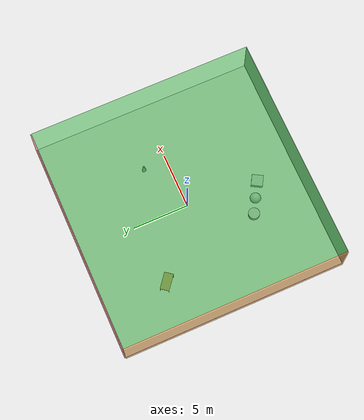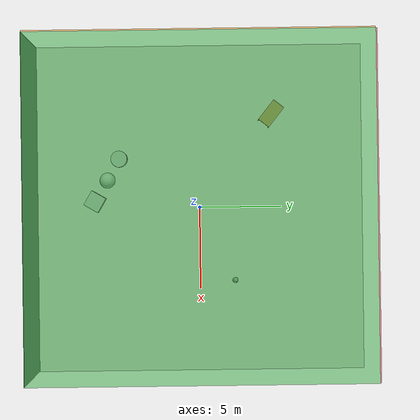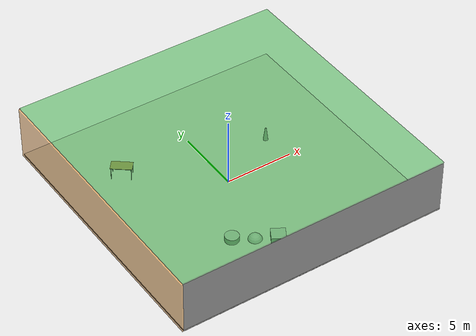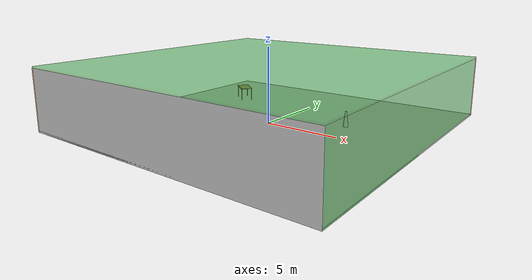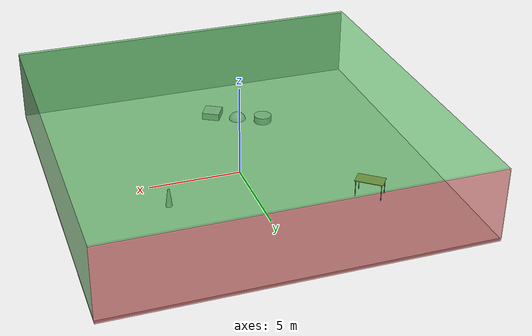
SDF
<sdf version="1.4">
 <world name="default">
  <physics type="ode">
   <max_step_size>0.001</max_step_size>
   <real_time_factor>1</real_time_factor>
   <real_time_update_rate>1000</real_time_update_rate>
   <gravity>0 0 -9.8</gravity>
  </physics>
  <scene><ambient>0.4 0.4 0.4 1</ambient><background>0.7 0.7 0.7 1</background><shadows>1</shadows></scene>
  <model name="Surrounding">
   <static>1</static>
   <link name="Ceiling">
    <collision name="Ceiling_Collision"><geometry><box><size>20 20 0.1</size></box></geometry></collision>
    <visual name="Ceiling_Visual">
     <geometry><box><size>20 20 0.1</size></box></geometry>
     <material>
      <script><uri>file://media/materials/scripts/gazebo.material</uri><name>Gazebo/GreenTransparent</name></script>
     </material>
    </visual>
    <pose>0 0 4.05 0 0 0</pose>
   </link>
   <link name="Wall_South">
    <collision name="Wall_South_Collision">
     <geometry><box><size>20 0 4</size></box></geometry>
     <pose>0 0 2 0 -0 0</pose>
    </collision>
    <visual name="Wall_South_Visual">
     <pose>0 0 2 0 -0 0</pose>
     <geometry><box><size>20 0 4</size></box></geometry>
     <material>
      <script><uri>file://media/materials/scripts/gazebo.material</uri><name>Gazebo/LightOff</name></script>
     </material>
    </visual>
    <velocity_decay><linear>0</linear><angular>0</angular></velocity_decay>
    <pose>0 -10 0 0 -0 0</pose>
   </link>
   <link name="Wall_East">
    <collision name="Wall_21_Collision">
     <geometry><box><size>20 0 4</size></box></geometry>
     <pose>0 0 2 0 -0 0</pose>
    </collision>
    <visual name="Wall_21_Visual">
     <pose>0 0 2 0 -0 0</pose>
     <geometry><box><size>20 0 4</size></box></geometry>
     <material>
      <script><uri>file://media/materials/scripts/gazebo.material</uri><name>Gazebo/GreenTransparent</name></script>
     </material>
    </visual>
    <velocity_decay><linear>0</linear><angular>0</angular></velocity_decay>
    <pose>10 0 0 0 -0 1.5708</pose>
   </link>
   <link name="Wall_North">
    <collision name="Wall_22_Collision">
     <geometry><box><size>20 0.2 4</size></box></geometry>
     <pose>0 0 2 0 -0 0</pose>
    </collision>
    <visual name="Wall_22_Visual">
     <pose>0 0 2 0 -0 0</pose>
     <geometry><box><size>20 0.2 4</size></box></geometry>
     <material>
      <script><uri>file://media/materials/scripts/gazebo.material</uri><name>Gazebo/RedTransparent</name></script>
     </material>
    </visual>
    <velocity_decay><linear>0</linear><angular>0</angular></velocity_decay>
    <pose>0 10 0 0 -0 0</pose>
   </link>
   <link name="Wall_West">
    <collision name="Wall_23_Collision">
     <geometry><box><size>20 0.2 4</size></box></geometry>
     <pose>0 0 2 0 -0 0</pose>
    </collision>
    <visual name="Wall_23_Visual">
     <pose>0 0 2 0 -0 0</pose>
     <geometry><box><size>20 0.2 4</size></box></geometry>
     <material>
      <script>
       <uri>file://media/materials/scripts/gazebo.material</uri>
       <name>Gazebo/OrangeTransparent</name>
      </script>
     </material>
    </visual>
    <velocity_decay><linear>0</linear><angular>0</angular></velocity_decay>
    <pose>-10 0 0 0 0 -1.5708</pose>
   </link>
   <link name="Ground_link">
    <collision name="collision">
     <pose>0 0 .05 0 -0 0</pose>
     <geometry><box><size>20 20 0.1</size></box></geometry>
    </collision>
    <visual name="visual">
     <pose>0 0 .05 0 -0 0</pose>
     <geometry><box><size>20 20 0.1</size></box></geometry>
     <material>
      <script><uri>file://media/materials/scripts/gazebo.material</uri><name>Gazebo/CeilingTiled</name></script>
     </material>
    </visual>
   </link>
   <static>1</static>
  </model>
  <spherical_coordinates>
   <surface_model>EARTH_WGS84</surface_model>
   <latitude_deg>0</latitude_deg>
   <longitude_deg>0</longitude_deg>
   <elevation>0</elevation>
   <heading_deg>0</heading_deg>
  </spherical_coordinates>
  <light name="lightball_0" type="diffuse">
   <diffuse>0.8 0.8 0.8 1</diffuse>
   <specular>0.2 0.2 0.2 1</specular>
   <attenuation>
    <range>100</range>
    <constant>0.7</constant>
    <linear>0.01</linear>
    <quadratic>0.001</quadratic>
   </attenuation>
   <direction>-0.5 0.1 -0.9</direction>
   <pose>7.65948795678 -0.758205903256 2.38018681745 0 0 0</pose>
  </light>
  <light name="lightball_1" type="diffuse">
   <diffuse>0.8 0.8 0.8 1</diffuse>
   <specular>0.2 0.2 0.2 1</specular>
   <attenuation>
    <range>100</range>
    <constant>0.7</constant>
    <linear>0.01</linear>
    <quadratic>0.001</quadratic>
   </attenuation>
   <direction>-0.5 0.1 -0.9</direction>
   <pose>9.59648726734 -1.91667793635 0.984665585306 0 0 0</pose>
  </light>
  <light name="lightball_2" type="diffuse">
   <diffuse>0.8 0.8 0.8 1</diffuse>
   <specular>0.2 0.2 0.2 1</specular>
   <attenuation>
    <range>100</range>
    <constant>0.7</constant>
    <linear>0.01</linear>
    <quadratic>0.001</quadratic>
   </attenuation>
   <direction>-0.5 0.1 -0.9</direction>
   <pose>-9.91346318152 1.33362618893 0.761742694377 0 0 0</pose>
  </light>
  <light name="lightball_3" type="diffuse">
   <diffuse>0.8 0.8 0.8 1</diffuse>
   <specular>0.2 0.2 0.2 1</specular>
   <attenuation>
    <range>100</range>
    <constant>0.7</constant>
    <linear>0.01</linear>
    <quadratic>0.001</quadratic>
   </attenuation>
   <direction>-0.5 0.1 -0.9</direction>
   <pose>9.68552202327 3.15626730521 1.07809750282 0 0 0</pose>
  </light>
  <light name="lightball_4" type="diffuse">
   <diffuse>0.8 0.8 0.8 1</diffuse>
   <specular>0.2 0.2 0.2 1</specular>
   <attenuation>
    <range>100</range>
    <constant>0.7</constant>
    <linear>0.01</linear>
    <quadratic>0.001</quadratic>
   </attenuation>
   <direction>-0.5 0.1 -0.9</direction>
   <pose>-7.95850852475 -5.68631524039 3.22552184869 0 0 0</pose>
  </light>
  <light name="lightball_5" type="diffuse">
   <diffuse>0.8 0.8 0.8 1</diffuse>
   <specular>0.2 0.2 0.2 1</specular>
   <attenuation>
    <range>100</range>
    <constant>0.7</constant>
    <linear>0.01</linear>
    <quadratic>0.001</quadratic>
   </attenuation>
   <direction>-0.5 0.1 -0.9</direction>
   <pose>-0.751996221567 -8.14401960923 1.92997183243 0 0 0</pose>
  </light>
  <light name="lightball_6" type="diffuse">
   <diffuse>0.8 0.8 0.8 1</diffuse>
   <specular>0.2 0.2 0.2 1</specular>
   <attenuation>
    <range>100</range>
    <constant>0.7</constant>
    <linear>0.01</linear>
    <quadratic>0.001</quadratic>
   </attenuation>
   <direction>-0.5 0.1 -0.9</direction>
   <pose>3.1122381095 -1.66968817214 2.89298714795 0 0 0</pose>
  </light>
  <include><uri>model://table</uri><pose>-5.64206168489 4.37393505534 0 0 0 2.47193653198</pose></include>
  <include>
   <uri>model://textured_shapes</uri>
   <pose>-1.7390400141 -5.68827440454 0 0 0 1.04622086084</pose>
  </include>
  <include>
   <uri>model://construction_cone</uri>
   <pose>4.49819519796 2.13523970332 0 0 0 2.87047626626</pose>
  </include>
 </world>
</sdf>

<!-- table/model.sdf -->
<sdf version="1.5">
  <model name="table">
    <static>true</static>
    <link name="link">
      <collision name="surface">
        <pose>0 0 1.0 0 0 0</pose>
        <geometry>
          <box>
            <size>1.5 0.8 0.03</size>
          </box>
        </geometry>
        <surface>
          <friction>
            <ode>
              <mu>0.6</mu>
              <mu2>0.6</mu2>
            </ode>
          </friction>
        </surface>
      </collision>
      <visual name="visual1">
        <pose>0 0 1.0 0 0 0</pose>
        <geometry>
          <box>
            <size>1.5 0.8 0.03</size>
          </box>
        </geometry>
        <material>
          <script>
            <uri>model://media/materials/scripts/gazebo.material</uri>
            <name>Gazebo/Wood</name>
          </script>
        </material>
      </visual>
      <collision name="front_left_leg">
        <pose>0.68 0.38 0.5 0 0 0</pose>
        <geometry>
          <cylinder>
            <radius>0.02</radius>
            <length>1.0</length>
          </cylinder>
        </geometry>
      </collision>
      <visual name="front_left_leg">
        <pose>0.68 0.38 0.5 0 0 0</pose>
        <geometry>
          <cylinder>
            <radius>0.02</radius>
            <length>1.0</length>
          </cylinder>
        </geometry>
        <material>
          <script>
            <uri>model://media/materials/scripts/gazebo.material</uri>
            <name>Gazebo/Grey</name>
          </script>
        </material>
      </visual>
      <collision name="front_right_leg">
        <pose>0.68 -0.38 0.5 0 0 0</pose>
        <geometry>
          <cylinder>
            <radius>0.02</radius>
            <length>1.0</length>
          </cylinder>
        </geometry>
      </collision>
      <visual name="front_right_leg">
        <pose>0.68 -0.38 0.5 0 0 0</pose>
        <geometry>
          <cylinder>
            <radius>0.02</radius>
            <length>1.0</length>
          </cylinder>
        </geometry>
        <material>
          <script>
            <uri>model://media/materials/scripts/gazebo.material</uri>
            <name>Gazebo/Grey</name>
          </script>
        </material>
      </visual>
      <collision name="back_right_leg">
        <pose>-0.68 -0.38 0.5 0 0 0</pose>
        <geometry>
          <cylinder>
            <radius>0.02</radius>
            <length>1.0</length>
          </cylinder>
        </geometry>
      </collision>
      <visual name="back_right_leg">
        <pose>-0.68 -0.38 0.5 0 0 0</pose>
        <geometry>
          <cylinder>
            <radius>0.02</radius>
            <length>1.0</length>
          </cylinder>
        </geometry>
        <material>
          <script>
            <uri>model://media/materials/scripts/gazebo.material</uri>
            <name>Gazebo/Grey</name>
          </script>
        </material>
      </visual>
      <collision name="back_left_leg">
        <pose>-0.68 0.38 0.5 0 0 0</pose>
        <geometry>
          <cylinder>
            <radius>0.02</radius>
            <length>1.0</length>
          </cylinder>
        </geometry>
      </collision>
      <visual name="back_left_leg">
        <pose>-0.68 0.38 0.5 0 0 0</pose>
        <geometry>
          <cylinder>
            <radius>0.02</radius>
            <length>1.0</length>
          </cylinder>
        </geometry>
        <material>
          <script>
            <uri>model://media/materials/scripts/gazebo.material</uri>
            <name>Gazebo/Grey</name>
          </script>
        </material>
      </visual>
    </link>
  </model>
</sdf>

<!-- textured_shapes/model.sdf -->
<sdf version="1.6">
  <model name="textured_shapes">
    <pose>0 0 0.5 0 0 0</pose>
    <link name="box">
      <pose>0 -1.5 0 0 0 0</pose>
      <collision name="collision">
        <geometry>
          <box>
            <size>1 1 1</size>
          </box>
        </geometry>
      </collision>
      <visual name="visual">
        <geometry>
          <box>
            <size>1 1 1</size>
          </box>
        </geometry>
        <material>
          <script>
            <uri>model://../model_source/models/textured_shapes/materials/scripts</uri>
            <uri>model://../model_source/models/textured_shapes/materials/textures</uri>
            <name>TexturedShape/Squares</name>
          </script>
        </material>
      </visual>
    </link>
    <link name="sphere">
      <collision name="collision">
        <geometry>
          <sphere>
            <radius>0.5</radius>
          </sphere>
        </geometry>
      </collision>
      <visual name="visual">
        <geometry>
          <sphere>
            <radius>0.5</radius>
          </sphere>
        </geometry>
        <material>
          <script>
            <uri>model://../model_source/models/textured_shapes/materials/scripts</uri>
            <uri>model://../model_source/models/textured_shapes/materials/textures</uri>
            <name>TexturedShape/Squares</name>
          </script>
        </material>
      </visual>
    </link>
    <link name="cylinder">
      <pose>0 1.5 0 0 0 0</pose>
      <collision name="collision">
        <geometry>
          <cylinder>
            <radius>0.5</radius>
            <length>1</length>
          </cylinder>
        </geometry>
      </collision>
      <visual name="visual">
        <geometry>
          <cylinder>
            <radius>0.5</radius>
            <length>1</length>
          </cylinder>
        </geometry>
        <material>
          <script>
            <uri>model://../model_source/models/textured_shapes/materials/scripts</uri>
            <uri>model://../model_source/models/textured_shapes/materials/textures</uri>
            <name>TexturedShape/Squares</name>
          </script>
        </material>
      </visual>
    </link>
  </model>
</sdf>

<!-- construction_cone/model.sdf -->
<sdf version="1.5">
  <model name="Construction Cone">
    <link name="link">
      <collision name="collision">
        <geometry>
          <mesh>
            <scale>10 10 10</scale>
            <uri>file://isr-testbed/construction_cone/meshes/construction_cone.dae</uri>
          </mesh>
        </geometry>
      </collision>
      <visual name="visual">
        <geometry>
          <mesh>
            <scale>10 10 10</scale>
            <uri>file://isr-testbed/construction_cone/meshes/construction_cone.dae</uri>
          </mesh>
        </geometry>
      </visual>
    </link>
  </model>
</sdf>
